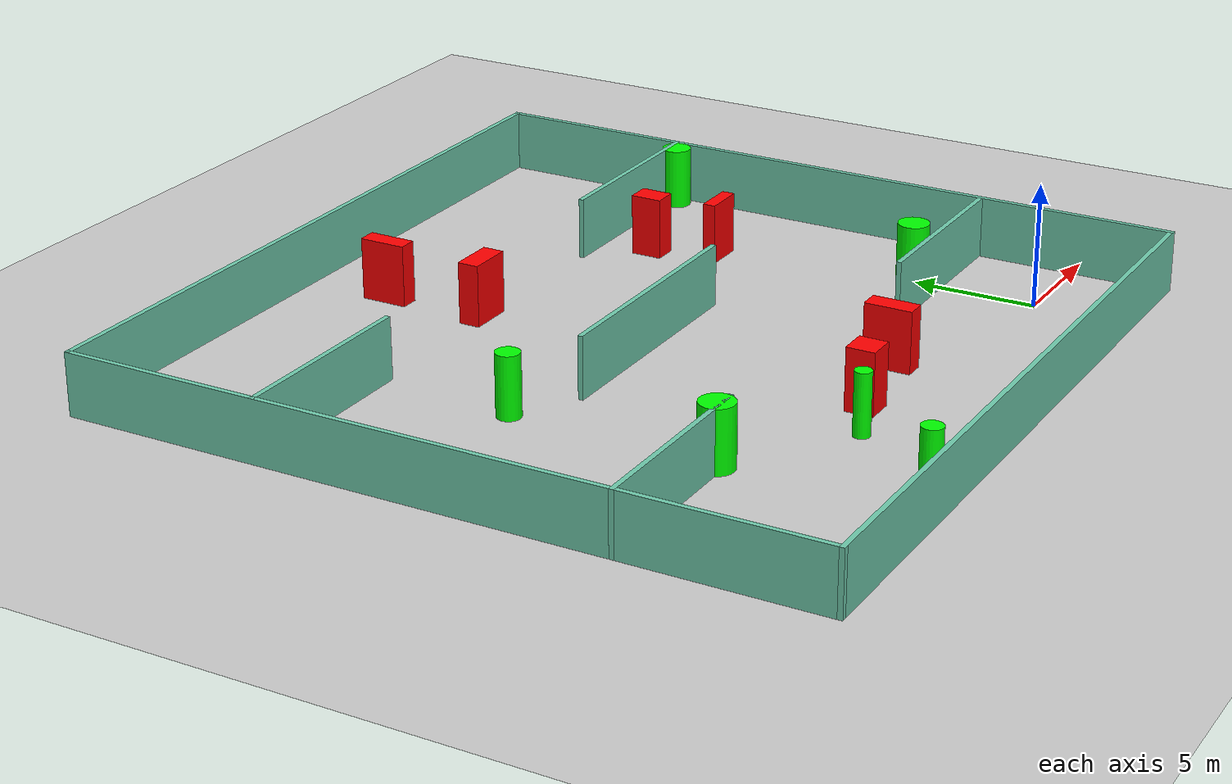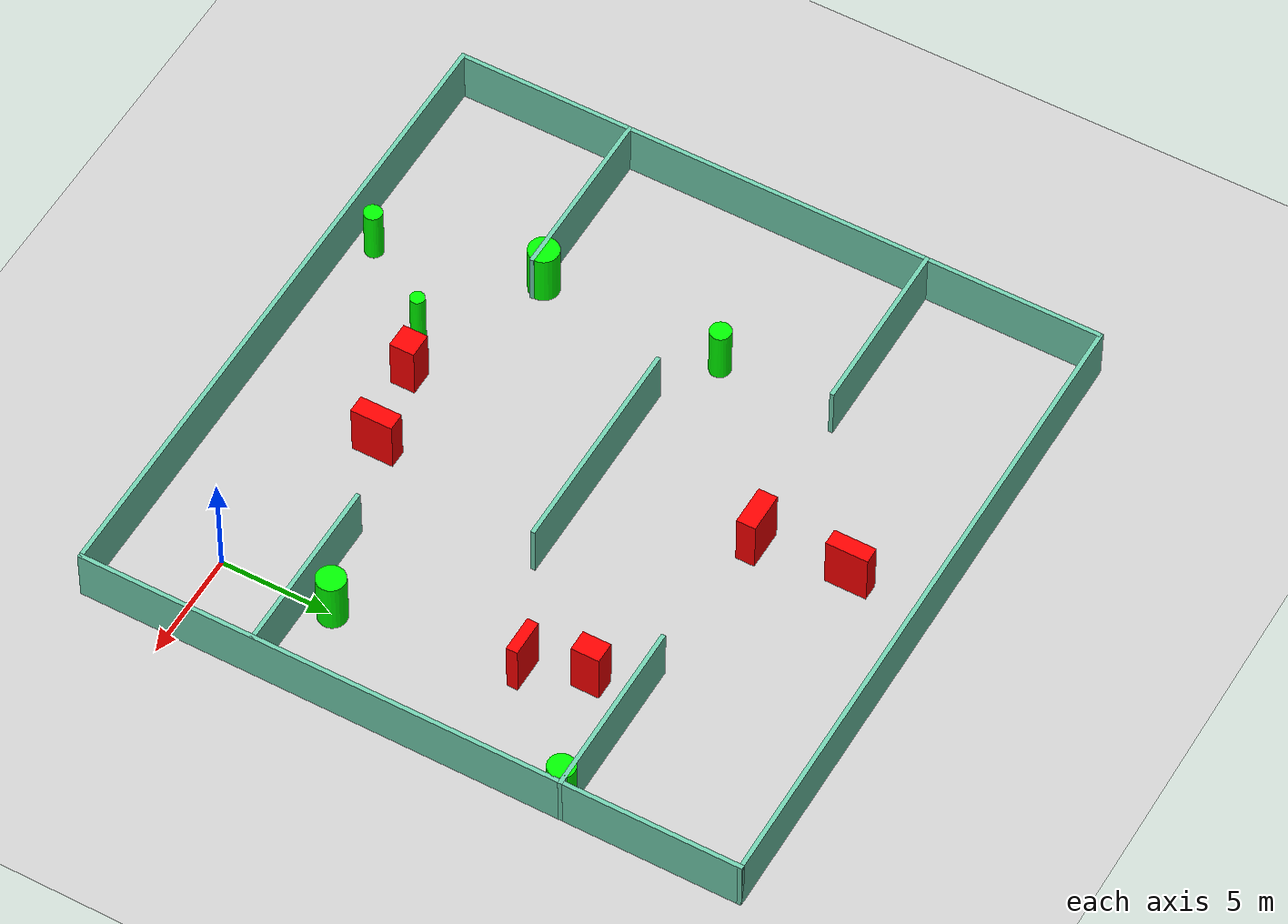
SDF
<sdf version="1.7">
 <world name="default">
  <light name="sun" type="directional">
   <pose>0 0 10 0 -0 0</pose>
   <diffuse>0.8 0.8 0.8 1</diffuse>
   <specular>0.2 0.2 0.2 1</specular>
   <attenuation>
    <range>1000</range>
    <constant>0.9</constant>
    <linear>0.01</linear>
    <quadratic>0.001</quadratic>
   </attenuation>
   <direction>-0.5 0.1 -0.9</direction>
   <spot><inner_angle>0</inner_angle><outer_angle>0</outer_angle><falloff>0</falloff></spot>
  </light>
  <model name="ground_plane">
   <static>1</static>
   <link name="link">
    <collision name="collision">
     <geometry><plane><normal>0 0 1</normal><size>100 100</size></plane></geometry>
     <surface>
      <contact><collide_bitmask>65535</collide_bitmask></contact>
      <friction><ode><mu>100</mu><mu2>50</mu2></ode></friction>
     </surface>
    </collision>
    <visual name="visual">
     <cast_shadows>0</cast_shadows>
     <geometry><plane><normal>0 0 1</normal><size>100 100</size></plane></geometry>
     <material>
      <script><uri>file://media/materials/scripts/gazebo.material</uri><name>Gazebo/Grey</name></script>
     </material>
    </visual>
   </link>
  </model>
  <gravity>0 0 -9.8</gravity>
  <magnetic_field>6e-06 2.3e-05 -4.2e-05</magnetic_field>
  <atmosphere type="adiabatic"/>
  <physics type="ode">
   <max_step_size>0.001</max_step_size>
   <real_time_factor>1</real_time_factor>
   <real_time_update_rate>1000</real_time_update_rate>
  </physics>
  <scene><ambient>0.4 0.4 0.4 1</ambient><background>0.7 0.7 0.7 1</background><shadows>1</shadows></scene>
  <spherical_coordinates>
   <surface_model>EARTH_WGS84</surface_model>
   <latitude_deg>0</latitude_deg>
   <longitude_deg>0</longitude_deg>
   <elevation>0</elevation>
   <heading_deg>0</heading_deg>
  </spherical_coordinates>
  <model name="my_base_walls">
   <link name="Wall_10">
    <collision name="Wall_10_Collision">
     <geometry><box><size>8.2 0.2 2.5</size></box></geometry>
     <pose>0 0 1.25 0 -0 0</pose>
    </collision>
    <visual name="Wall_10_Visual">
     <pose>0 0 1.25 0 -0 0</pose>
     <geometry><box><size>8.2 0.2 2.5</size></box></geometry>
     <material>
      <script><uri>file://media/materials/scripts/gazebo.material</uri><name>Gazebo/Grey</name></script>
      <ambient>0.435294 0.796078 0.67451 1</ambient>
     </material>
     <meta><layer>0</layer></meta>
    </visual>
    <pose>-11 -7 0 0 -0 0</pose>
   </link>
   <link name="Wall_12">
    <collision name="Wall_12_Collision">
     <geometry><box><size>8.2 0.2 2.5</size></box></geometry>
     <pose>0 0 1.25 0 -0 0</pose>
    </collision>
    <visual name="Wall_12_Visual">
     <pose>0 0 1.25 0 -0 0</pose>
     <geometry><box><size>8.2 0.2 2.5</size></box></geometry>
     <material>
      <script><uri>file://media/materials/scripts/gazebo.material</uri><name>Gazebo/Grey</name></script>
      <ambient>0.435294 0.796078 0.67451 1</ambient>
     </material>
     <meta><layer>0</layer></meta>
    </visual>
    <pose>-11 7 0 0 -0 0</pose>
   </link>
   <link name="Wall_14">
    <collision name="Wall_14_Collision">
     <geometry><box><size>8.2 0.2 2.5</size></box></geometry>
     <pose>0 0 1.25 0 -0 0</pose>
    </collision>
    <visual name="Wall_14_Visual">
     <pose>0 0 1.25 0 -0 0</pose>
     <geometry><box><size>8.2 0.2 2.5</size></box></geometry>
     <material>
      <script><uri>file://media/materials/scripts/gazebo.material</uri><name>Gazebo/Grey</name></script>
      <ambient>0.435294 0.796078 0.67451 1</ambient>
     </material>
     <meta><layer>0</layer></meta>
    </visual>
    <pose>11 7 0 0 -0 3.14159</pose>
   </link>
   <link name="Wall_16">
    <collision name="Wall_16_Collision">
     <geometry><box><size>10.2 0.2 2.5</size></box></geometry>
     <pose>0 0 1.25 0 -0 0</pose>
    </collision>
    <visual name="Wall_16_Visual">
     <pose>0 0 1.25 0 -0 0</pose>
     <geometry><box><size>10.2 0.2 2.5</size></box></geometry>
     <material>
      <script><uri>file://media/materials/scripts/gazebo.material</uri><name>Gazebo/Grey</name></script>
      <ambient>0.435294 0.796078 0.67451 1</ambient>
     </material>
     <meta><layer>0</layer></meta>
    </visual>
    <pose>0 0 0 0 -0 3.14159</pose>
   </link>
   <link name="Wall_2">
    <collision name="Wall_2_Collision">
     <geometry><box><size>30.2 0.2 2.5</size></box></geometry>
     <pose>0 0 1.25 0 -0 0</pose>
    </collision>
    <visual name="Wall_2_Visual">
     <pose>0 0 1.25 0 -0 0</pose>
     <geometry><box><size>30.2 0.2 2.5</size></box></geometry>
     <material>
      <script><uri>file://media/materials/scripts/gazebo.material</uri><name>Gazebo/Grey</name></script>
      <ambient>0.435294 0.796078 0.67451 1</ambient>
     </material>
     <meta><layer>0</layer></meta>
    </visual>
    <pose>0 -15 0 0 -0 3.14159</pose>
   </link>
   <link name="Wall_3">
    <collision name="Wall_3_Collision">
     <geometry><box><size>30.2 0.2 2.5</size></box></geometry>
     <pose>0 0 1.25 0 -0 0</pose>
    </collision>
    <visual name="Wall_3_Visual">
     <pose>0 0 1.25 0 -0 0</pose>
     <geometry><box><size>30.2 0.2 2.5</size></box></geometry>
     <material>
      <script><uri>file://media/materials/scripts/gazebo.material</uri><name>Gazebo/Grey</name></script>
      <ambient>0.435294 0.796078 0.67451 1</ambient>
     </material>
     <meta><layer>0</layer></meta>
    </visual>
    <pose>-15 0 0 0 -0 1.5708</pose>
   </link>
   <link name="Wall_4">
    <collision name="Wall_4_Collision">
     <geometry><box><size>30.2 0.2 2.5</size></box></geometry>
     <pose>0 0 1.25 0 -0 0</pose>
    </collision>
    <visual name="Wall_4_Visual">
     <pose>0 0 1.25 0 -0 0</pose>
     <geometry><box><size>30.2 0.2 2.5</size></box></geometry>
     <material>
      <script><uri>file://media/materials/scripts/gazebo.material</uri><name>Gazebo/Grey</name></script>
      <ambient>0.435294 0.796078 0.67451 1</ambient>
     </material>
     <meta><layer>0</layer></meta>
    </visual>
    <pose>0 15 0 0 -0 0</pose>
   </link>
   <link name="Wall_6">
    <collision name="Wall_6_Collision">
     <geometry><box><size>30.2 0.2 2.5</size></box></geometry>
     <pose>0 0 1.25 0 -0 0</pose>
    </collision>
    <visual name="Wall_6_Visual">
     <pose>0 0 1.25 0 -0 0</pose>
     <geometry><box><size>30.2 0.2 2.5</size></box></geometry>
     <material>
      <script><uri>file://media/materials/scripts/gazebo.material</uri><name>Gazebo/Grey</name></script>
      <ambient>0.435294 0.796078 0.67451 1</ambient>
     </material>
     <meta><layer>0</layer></meta>
    </visual>
    <pose>15 0 0 0 -0 1.5708</pose>
   </link>
   <link name="Wall_8">
    <collision name="Wall_8_Collision">
     <geometry><box><size>8.2 0.2 2.5</size></box></geometry>
     <pose>0 0 1.25 0 -0 0</pose>
    </collision>
    <visual name="Wall_8_Visual">
     <pose>0 0 1.25 0 -0 0</pose>
     <geometry><box><size>8.2 0.2 2.5</size></box></geometry>
     <material>
      <script><uri>file://media/materials/scripts/gazebo.material</uri><name>Gazebo/Grey</name></script>
      <ambient>0.435294 0.796078 0.67451 1</ambient>
     </material>
     <meta><layer>0</layer></meta>
    </visual>
    <pose>11 -7 0 0 -0 3.14159</pose>
   </link>
   <static>1</static>
   <pose>-11 11 0 0 -0 0</pose>
  </model>
  <model name="cylinder1">
   <static>1</static>
   <link name="link">
    <inertial>
     <mass>1</mass>
     <inertia><ixx>0.5</ixx><ixy>0</ixy><ixz>0</ixz><iyy>0.5</iyy><iyz>0</iyz><izz>1</izz></inertia>
    </inertial>
    <collision name="collision">
     <geometry><cylinder><radius>0.33063236061120854</radius><length>2.5</length></cylinder></geometry>
    </collision>
    <visual name="visual">
     <geometry><cylinder><radius>0.33063236061120854</radius><length>2.5</length></cylinder></geometry>
     <material>
      <ambient>0 1 0 1</ambient>
      <diffuse>0 1 0 1</diffuse>
      <specular>0.1 0.1 0.1 1</specular>
      <emissive>0 0 0 0</emissive>
     </material>
    </visual>
   </link>
   <pose>-13.901685828827432 0.9328776848553657 1.25 0 0 0</pose>
  </model>
  <model name="cylinder2">
   <static>1</static>
   <link name="link">
    <inertial>
     <mass>1</mass>
     <inertia><ixx>0.5</ixx><ixy>0</ixy><ixz>0</ixz><iyy>0.5</iyy><iyz>0</iyz><izz>1</izz></inertia>
    </inertial>
    <collision name="collision">
     <geometry><cylinder><radius>0.6891656978283762</radius><length>2.5</length></cylinder></geometry>
    </collision>
    <visual name="visual">
     <geometry><cylinder><radius>0.6891656978283762</radius><length>2.5</length></cylinder></geometry>
     <material>
      <ambient>0 1 0 1</ambient>
      <diffuse>0 1 0 1</diffuse>
      <specular>0.1 0.1 0.1 1</specular>
      <emissive>0 0 0 0</emissive>
     </material>
    </visual>
   </link>
   <pose>-18.624254671307135 4.156635253502987 1.25 0 0 0</pose>
  </model>
  <model name="cylinder3">
   <static>1</static>
   <link name="link">
    <inertial>
     <mass>1</mass>
     <inertia><ixx>0.5</ixx><ixy>0</ixy><ixz>0</ixz><iyy>0.5</iyy><iyz>0</iyz><izz>1</izz></inertia>
    </inertial>
    <collision name="collision">
     <geometry><cylinder><radius>0.47713235595237846</radius><length>2.5</length></cylinder></geometry>
    </collision>
    <visual name="visual">
     <geometry><cylinder><radius>0.47713235595237846</radius><length>2.5</length></cylinder></geometry>
     <material>
      <ambient>0 1 0 1</ambient>
      <diffuse>0 1 0 1</diffuse>
      <specular>0.1 0.1 0.1 1</specular>
      <emissive>0 0 0 0</emissive>
     </material>
    </visual>
   </link>
   <pose>-18.526614793143672 12.514453846475906 1.25 0 0 0</pose>
  </model>
  <model name="cylinder4">
   <static>1</static>
   <link name="link">
    <inertial>
     <mass>1</mass>
     <inertia><ixx>0.5</ixx><ixy>0</ixy><ixz>0</ixz><iyy>0.5</iyy><iyz>0</iyz><izz>1</izz></inertia>
    </inertial>
    <collision name="collision">
     <geometry><cylinder><radius>0.6473375902792056</radius><length>2.5</length></cylinder></geometry>
    </collision>
    <visual name="visual">
     <geometry><cylinder><radius>0.6473375902792056</radius><length>2.5</length></cylinder></geometry>
     <material>
      <ambient>0 1 0 1</ambient>
      <diffuse>0 1 0 1</diffuse>
      <specular>0.1 0.1 0.1 1</specular>
      <emissive>0 0 0 0</emissive>
     </material>
    </visual>
   </link>
   <pose>0.028894125298791096 5.201641181043305 1.25 0 0 0</pose>
  </model>
  <model name="cylinder5">
   <static>1</static>
   <link name="link">
    <inertial>
     <mass>1</mass>
     <inertia><ixx>0.5</ixx><ixy>0</ixy><ixz>0</ixz><iyy>0.5</iyy><iyz>0</iyz><izz>1</izz></inertia>
    </inertial>
    <collision name="collision">
     <geometry><cylinder><radius>0.6004001227257818</radius><length>2.5</length></cylinder></geometry>
    </collision>
    <visual name="visual">
     <geometry><cylinder><radius>0.6004001227257818</radius><length>2.5</length></cylinder></geometry>
     <material>
      <ambient>0 1 0 1</ambient>
      <diffuse>0 1 0 1</diffuse>
      <specular>0.1 0.1 0.1 1</specular>
      <emissive>0 0 0 0</emissive>
     </material>
    </visual>
   </link>
   <pose>3.338672248012525 17.646540421895825 1.25 0 0 0</pose>
  </model>
  <model name="cylinder6">
   <static>1</static>
   <link name="link">
    <inertial>
     <mass>1</mass>
     <inertia><ixx>0.5</ixx><ixy>0</ixy><ixz>0</ixz><iyy>0.5</iyy><iyz>0</iyz><izz>1</izz></inertia>
    </inertial>
    <collision name="collision">
     <geometry><cylinder><radius>0.4169704950701318</radius><length>2.5</length></cylinder></geometry>
    </collision>
    <visual name="visual">
     <geometry><cylinder><radius>0.4169704950701318</radius><length>2.5</length></cylinder></geometry>
     <material>
      <ambient>0 1 0 1</ambient>
      <diffuse>0 1 0 1</diffuse>
      <specular>0.1 0.1 0.1 1</specular>
      <emissive>0 0 0 0</emissive>
     </material>
    </visual>
   </link>
   <pose>-16.852555298705013 -2.9348582602693067 1.25 0 0 0</pose>
  </model>
  <model name="box1">
   <static>1</static>
   <link name="link">
    <inertial>
     <mass>1</mass>
     <inertia><ixx>0.083</ixx><ixy>0</ixy><ixz>0</ixz><iyy>0.083</iyy><iyz>0</iyz><izz>0.083</izz></inertia>
    </inertial>
    <collision name="collision">
     <geometry><box><size>0.7448969968773422 1.9044957493797556 2.5</size></box></geometry>
    </collision>
    <visual name="visual">
     <geometry><box><size>0.7448969968773422 1.9044957493797556 2.5</size></box></geometry>
     <material>
      <ambient>1 0 0 1</ambient>
      <diffuse>1 0 0 1</diffuse>
      <specular>0.1 0.1 0.1 1</specular>
      <emissive>0 0 0 0</emissive>
     </material>
    </visual>
    <sensor name="my_contact" type="contact">
     <contact><collision>box_collision</collision><topic>__default_topic__</topic></contact>
    </sensor>
   </link>
   <pose>-11.595441777559717 22.322485308593116 1.25 0 0 0</pose>
  </model>
  <model name="box2">
   <static>1</static>
   <link name="link">
    <inertial>
     <mass>1</mass>
     <inertia><ixx>0.083</ixx><ixy>0</ixy><ixz>0</ixz><iyy>0.083</iyy><iyz>0</iyz><izz>0.083</izz></inertia>
    </inertial>
    <collision name="collision">
     <geometry><box><size>0.8163625087899671 1.9150745732300307 2.5</size></box></geometry>
    </collision>
    <visual name="visual">
     <geometry><box><size>0.8163625087899671 1.9150745732300307 2.5</size></box></geometry>
     <material>
      <ambient>1 0 0 1</ambient>
      <diffuse>1 0 0 1</diffuse>
      <specular>0.1 0.1 0.1 1</specular>
      <emissive>0 0 0 0</emissive>
     </material>
    </visual>
    <sensor name="my_contact" type="contact">
     <contact><collision>box_collision</collision><topic>__default_topic__</topic></contact>
    </sensor>
   </link>
   <pose>-7.963509512558627 2.5174354399671124 1.25 0 0 0</pose>
  </model>
  <model name="box3">
   <static>1</static>
   <link name="link">
    <inertial>
     <mass>1</mass>
     <inertia><ixx>0.083</ixx><ixy>0</ixy><ixz>0</ixz><iyy>0.083</iyy><iyz>0</iyz><izz>0.083</izz></inertia>
    </inertial>
    <collision name="collision">
     <geometry><box><size>1.836915261432996 0.8620469177786044 2.5</size></box></geometry>
    </collision>
    <visual name="visual">
     <geometry><box><size>1.836915261432996 0.8620469177786044 2.5</size></box></geometry>
     <material>
      <ambient>1 0 0 1</ambient>
      <diffuse>1 0 0 1</diffuse>
      <specular>0.1 0.1 0.1 1</specular>
      <emissive>0 0 0 0</emissive>
     </material>
    </visual>
    <sensor name="my_contact" type="contact">
     <contact><collision>box_collision</collision><topic>__default_topic__</topic></contact>
    </sensor>
   </link>
   <pose>-11.355700629540925 18.184583253104503 1.25 0 0 0</pose>
  </model>
  <model name="box4">
   <static>1</static>
   <link name="link">
    <inertial>
     <mass>1</mass>
     <inertia><ixx>0.083</ixx><ixy>0</ixy><ixz>0</ixz><iyy>0.083</iyy><iyz>0</iyz><izz>0.083</izz></inertia>
    </inertial>
    <collision name="collision">
     <geometry><box><size>0.9620714598437157 1.274489521897254 2.5</size></box></geometry>
    </collision>
    <visual name="visual">
     <geometry><box><size>0.9620714598437157 1.274489521897254 2.5</size></box></geometry>
     <material>
      <ambient>1 0 0 1</ambient>
      <diffuse>1 0 0 1</diffuse>
      <specular>0.1 0.1 0.1 1</specular>
      <emissive>0 0 0 0</emissive>
     </material>
    </visual>
    <sensor name="my_contact" type="contact">
     <contact><collision>box_collision</collision><topic>__default_topic__</topic></contact>
    </sensor>
   </link>
   <pose>-2.1906770652127996 15.800909169667097 1.25 0 0 0</pose>
  </model>
  <model name="box5">
   <static>1</static>
   <link name="link">
    <inertial>
     <mass>1</mass>
     <inertia><ixx>0.083</ixx><ixy>0</ixy><ixz>0</ixz><iyy>0.083</iyy><iyz>0</iyz><izz>0.083</izz></inertia>
    </inertial>
    <collision name="collision">
     <geometry><box><size>1.6799274063691143 0.5111598342936061 2.5</size></box></geometry>
    </collision>
    <visual name="visual">
     <geometry><box><size>1.6799274063691143 0.5111598342936061 2.5</size></box></geometry>
     <material>
      <ambient>1 0 0 1</ambient>
      <diffuse>1 0 0 1</diffuse>
      <specular>0.1 0.1 0.1 1</specular>
      <emissive>0 0 0 0</emissive>
     </material>
    </visual>
    <sensor name="my_contact" type="contact">
     <contact><collision>box_collision</collision><topic>__default_topic__</topic></contact>
    </sensor>
   </link>
   <pose>-1.3006564049435276 13.196452382275492 1.25 0 0 0</pose>
  </model>
  <model name="box6">
   <static>1</static>
   <link name="link">
    <inertial>
     <mass>1</mass>
     <inertia><ixx>0.083</ixx><ixy>0</ixy><ixz>0</ixz><iyy>0.083</iyy><iyz>0</iyz><izz>0.083</izz></inertia>
    </inertial>
    <collision name="collision">
     <geometry><box><size>1.147752556080802 1.1396826419651724 2.5</size></box></geometry>
    </collision>
    <visual name="visual">
     <geometry><box><size>1.147752556080802 1.1396826419651724 2.5</size></box></geometry>
     <material>
      <ambient>1 0 0 1</ambient>
      <diffuse>1 0 0 1</diffuse>
      <specular>0.1 0.1 0.1 1</specular>
      <emissive>0 0 0 0</emissive>
     </material>
    </visual>
    <sensor name="my_contact" type="contact">
     <contact><collision>box_collision</collision><topic>__default_topic__</topic></contact>
    </sensor>
   </link>
   <pose>-11.811455399547576 1.7582898741128101 1.25 0 0 0</pose>
  </model>
 </world>
</sdf>
